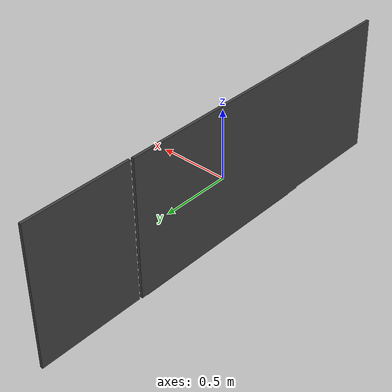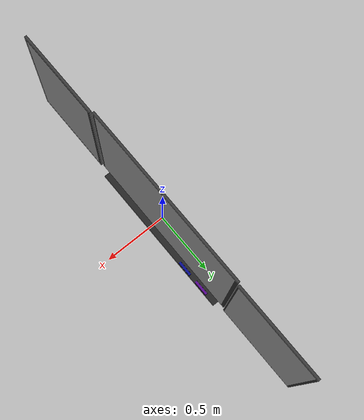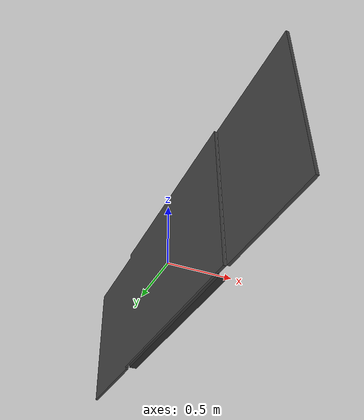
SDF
<?xml version='1.0'?>
<sdf version='1.5'>
    <model name="whiteboard_wall">
        <pose>0 0 0 0 0 0</pose>
        <static>true</static>
        <link name='model_body'>
            <visual name="visual">
                <geometry>
                    <mesh>
                        <uri>model://robert_gazebo/meshes/board_wall_visual.dae</uri>
                        <scale>1 1 1</scale>
                    </mesh>
                </geometry>
            </visual>

            <collision name="collision">
                <geometry>
                    <mesh>
                        <uri>model://robert_gazebo/meshes/board_wall_collision.dae</uri>
                        <scale>1 1 1</scale>
                    </mesh>
                </geometry>
            </collision>
            <inertial>
                <pose>0 0 0 0 0 0</pose>
                <inertia>
                    <ixx>2.5</ixx>
                    <ixy>0</ixy>
                    <ixz>0</ixz>
                    <iyy>0.5</iyy>
                    <iyz>0</iyz>
                    <izz>2.0</izz>
                </inertia>
                <mass>6.0</mass>
            </inertial>
        </link>
    </model>
</sdf>
